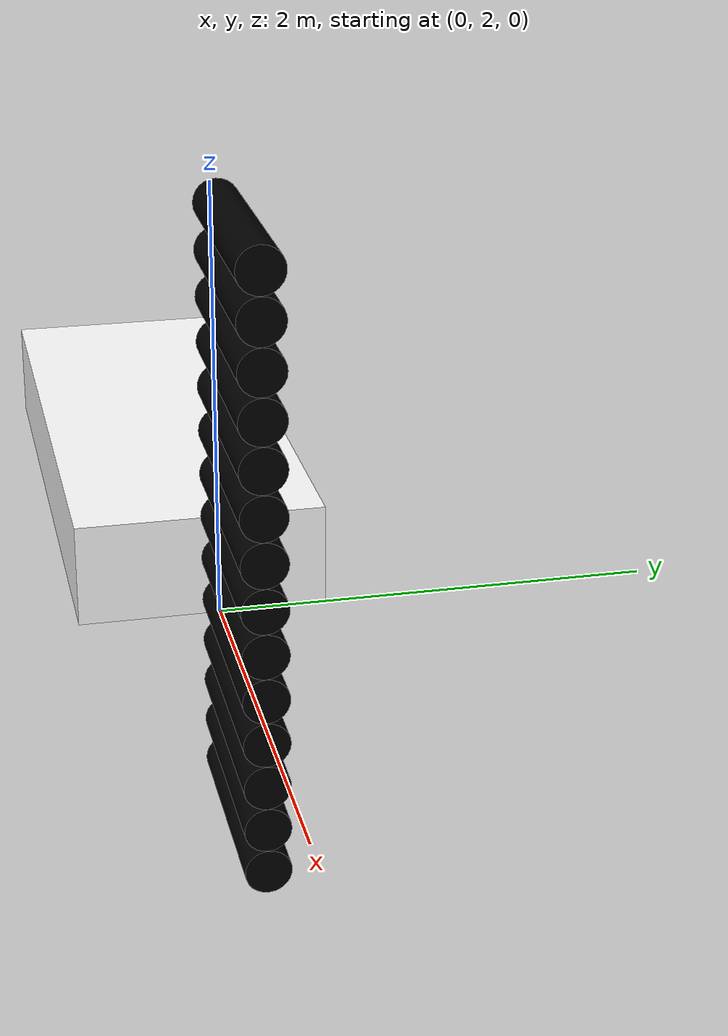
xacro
<?xml version="1.0"?>
<robot name="fliessband">
    <link name="base_link">
        <inertial>
            <origin xyz="-2 2 0" rpy="0.0 0.0 0.0"/>
            <mass value="1000"/>
            <inertia ixx="166.667" ixy="0.0" ixz="0.0" iyy="166.667" iyz="0.0" izz="166.667"/>
        </inertial>
        <visual name="">
            <origin xyz="-2 2 0" rpy="0.0 0.0 0.0"/>
            <geometry>
                <box size="3 1.2 0.5"/>
            </geometry>
            <material name="">
                <color rgba="1.0 1.0 1.0 1.0"/>
                <texture filename=""/>
            </material>
        </visual>
        <collision>
            <origin xyz="-2 2 0" rpy="0.0 0.0 0.0"/>
            <geometry>
                <box size="3 1.2 0.5"/>
            </geometry>
        </collision>

    </link>
      <gazebo reference="base_link">
       <material>Gazebo/White</material>
      </gazebo>
<link name="Cylinder_1">
        <inertial>
          <origin xyz="-1.95 2 0.65" />
          <mass value="0.1" />
          <inertia  ixx="0.01667" ixy="0.0"  ixz="0.0"  iyy="0.01667"  iyz="0.0"  izz="0.01667" />
        </inertial>
        <visual>
          <origin xyz="-1.95 2 0.65" />
         <geometry>
           <cylinder length="1" radius="0.1"/>
         </geometry>
         <material name="">
                <color rgba="0.0 0.0 0.0 1.0"/>
                <texture filename=""/>
            </material>
       </visual>
       <collision>
         <origin xyz="-1.95 2 0.65" />
         <geometry>
           <cylinder length="1" radius="0.1"/>
         </geometry>
       </collision>
     </link>
     <gazebo reference="Cylinder_1">
       <material>Gazebo/Black</material>
      </gazebo>
<link name="Cylinder_2">
        <inertial>
          <origin xyz="-1.7489999999999999 2 0.65" />
          <mass value="0.1" />
          <inertia  ixx="0.01667" ixy="0.0"  ixz="0.0"  iyy="0.01667"  iyz="0.0"  izz="0.01667" />
        </inertial>
        <visual>
          <origin xyz="-1.7489999999999999 2 0.65" />
         <geometry>
           <cylinder length="1" radius="0.1"/>
         </geometry>
         <material name="">
                <color rgba="0.0 0.0 0.0 1.0"/>
                <texture filename=""/>
            </material>
       </visual>
       <collision>
         <origin xyz="-1.7489999999999999 2 0.65" />
         <geometry>
           <cylinder length="1" radius="0.1"/>
         </geometry>
       </collision>
     </link>
     <gazebo reference="Cylinder_2">
       <material>Gazebo/Black</material>
      </gazebo>
<link name="Cylinder_3">
        <inertial>
          <origin xyz="-1.548 2 0.65" />
          <mass value="0.1" />
          <inertia  ixx="0.01667" ixy="0.0"  ixz="0.0"  iyy="0.01667"  iyz="0.0"  izz="0.01667" />
        </inertial>
        <visual>
          <origin xyz="-1.548 2 0.65" />
         <geometry>
           <cylinder length="1" radius="0.1"/>
         </geometry>
         <material name="">
                <color rgba="0.0 0.0 0.0 1.0"/>
                <texture filename=""/>
            </material>
       </visual>
       <collision>
         <origin xyz="-1.548 2 0.65" />
         <geometry>
           <cylinder length="1" radius="0.1"/>
         </geometry>
       </collision>
     </link>
     <gazebo reference="Cylinder_3">
       <material>Gazebo/Black</material>
      </gazebo>
<link name="Cylinder_4">
        <inertial>
          <origin xyz="-1.347 2 0.65" />
          <mass value="0.1" />
          <inertia  ixx="0.01667" ixy="0.0"  ixz="0.0"  iyy="0.01667"  iyz="0.0"  izz="0.01667" />
        </inertial>
        <visual>
          <origin xyz="-1.347 2 0.65" />
         <geometry>
           <cylinder length="1" radius="0.1"/>
         </geometry>
         <material name="">
                <color rgba="0.0 0.0 0.0 1.0"/>
                <texture filename=""/>
            </material>
       </visual>
       <collision>
         <origin xyz="-1.347 2 0.65" />
         <geometry>
           <cylinder length="1" radius="0.1"/>
         </geometry>
       </collision>
     </link>
     <gazebo reference="Cylinder_4">
       <material>Gazebo/Black</material>
      </gazebo>
<link name="Cylinder_5">
        <inertial>
          <origin xyz="-1.146 2 0.65" />
          <mass value="0.1" />
          <inertia  ixx="0.01667" ixy="0.0"  ixz="0.0"  iyy="0.01667"  iyz="0.0"  izz="0.01667" />
        </inertial>
        <visual>
          <origin xyz="-1.146 2 0.65" />
         <geometry>
           <cylinder length="1" radius="0.1"/>
         </geometry>
         <material name="">
                <color rgba="0.0 0.0 0.0 1.0"/>
                <texture filename=""/>
            </material>
       </visual>
       <collision>
         <origin xyz="-1.146 2 0.65" />
         <geometry>
           <cylinder length="1" radius="0.1"/>
         </geometry>
       </collision>
     </link>
     <gazebo reference="Cylinder_5">
       <material>Gazebo/Black</material>
      </gazebo>
<link name="Cylinder_6">
        <inertial>
          <origin xyz="-0.9449999999999998 2 0.65" />
          <mass value="0.1" />
          <inertia  ixx="0.01667" ixy="0.0"  ixz="0.0"  iyy="0.01667"  iyz="0.0"  izz="0.01667" />
        </inertial>
        <visual>
          <origin xyz="-0.9449999999999998 2 0.65" />
         <geometry>
           <cylinder length="1" radius="0.1"/>
         </geometry>
         <material name="">
                <color rgba="0.0 0.0 0.0 1.0"/>
                <texture filename=""/>
            </material>
       </visual>
       <collision>
         <origin xyz="-0.9449999999999998 2 0.65" />
         <geometry>
           <cylinder length="1" radius="0.1"/>
         </geometry>
       </collision>
     </link>
     <gazebo reference="Cylinder_6">
       <material>Gazebo/Black</material>
      </gazebo>
<link name="Cylinder_7">
        <inertial>
          <origin xyz="-0.744 2 0.65" />
          <mass value="0.1" />
          <inertia  ixx="0.01667" ixy="0.0"  ixz="0.0"  iyy="0.01667"  iyz="0.0"  izz="0.01667" />
        </inertial>
        <visual>
          <origin xyz="-0.744 2 0.65" />
         <geometry>
           <cylinder length="1" radius="0.1"/>
         </geometry>
         <material name="">
                <color rgba="0.0 0.0 0.0 1.0"/>
                <texture filename=""/>
            </material>
       </visual>
       <collision>
         <origin xyz="-0.744 2 0.65" />
         <geometry>
           <cylinder length="1" radius="0.1"/>
         </geometry>
       </collision>
     </link>
     <gazebo reference="Cylinder_7">
       <material>Gazebo/Black</material>
      </gazebo>
<link name="Cylinder_8">
        <inertial>
          <origin xyz="-0.5429999999999999 2 0.65" />
          <mass value="0.1" />
          <inertia  ixx="0.01667" ixy="0.0"  ixz="0.0"  iyy="0.01667"  iyz="0.0"  izz="0.01667" />
        </inertial>
        <visual>
          <origin xyz="-0.5429999999999999 2 0.65" />
         <geometry>
           <cylinder length="1" radius="0.1"/>
         </geometry>
         <material name="">
                <color rgba="0.0 0.0 0.0 1.0"/>
                <texture filename=""/>
            </material>
       </visual>
       <collision>
         <origin xyz="-0.5429999999999999 2 0.65" />
         <geometry>
           <cylinder length="1" radius="0.1"/>
         </geometry>
       </collision>
     </link>
     <gazebo reference="Cylinder_8">
       <material>Gazebo/Black</material>
      </gazebo>
<link name="Cylinder_9">
        <inertial>
          <origin xyz="-0.34199999999999986 2 0.65" />
          <mass value="0.1" />
          <inertia  ixx="0.01667" ixy="0.0"  ixz="0.0"  iyy="0.01667"  iyz="0.0"  izz="0.01667" />
        </inertial>
        <visual>
          <origin xyz="-0.34199999999999986 2 0.65" />
         <geometry>
           <cylinder length="1" radius="0.1"/>
         </geometry>
         <material name="">
                <color rgba="0.0 0.0 0.0 1.0"/>
                <texture filename=""/>
            </material>
       </visual>
       <collision>
         <origin xyz="-0.34199999999999986 2 0.65" />
         <geometry>
           <cylinder length="1" radius="0.1"/>
         </geometry>
       </collision>
     </link>
     <gazebo reference="Cylinder_9">
       <material>Gazebo/Black</material>
      </gazebo>
<link name="Cylinder_10">
        <inertial>
          <origin xyz="-0.1409999999999998 2 0.65" />
          <mass value="0.1" />
          <inertia  ixx="0.01667" ixy="0.0"  ixz="0.0"  iyy="0.01667"  iyz="0.0"  izz="0.01667" />
        </inertial>
        <visual>
          <origin xyz="-0.1409999999999998 2 0.65" />
         <geometry>
           <cylinder length="1" radius="0.1"/>
         </geometry>
         <material name="">
                <color rgba="0.0 0.0 0.0 1.0"/>
                <texture filename=""/>
            </material>
       </visual>
       <collision>
         <origin xyz="-0.1409999999999998 2 0.65" />
         <geometry>
           <cylinder length="1" radius="0.1"/>
         </geometry>
       </collision>
     </link>
     <gazebo reference="Cylinder_10">
       <material>Gazebo/Black</material>
      </gazebo>
<link name="Cylinder_11">
        <inertial>
          <origin xyz="0.060000000000000275 2 0.65" />
          <mass value="0.1" />
          <inertia  ixx="0.01667" ixy="0.0"  ixz="0.0"  iyy="0.01667"  iyz="0.0"  izz="0.01667" />
        </inertial>
        <visual>
          <origin xyz="0.060000000000000275 2 0.65" />
         <geometry>
           <cylinder length="1" radius="0.1"/>
         </geometry>
         <material name="">
                <color rgba="0.0 0.0 0.0 1.0"/>
                <texture filename=""/>
            </material>
       </visual>
       <collision>
         <origin xyz="0.060000000000000275 2 0.65" />
         <geometry>
           <cylinder length="1" radius="0.1"/>
         </geometry>
       </collision>
     </link>
     <gazebo reference="Cylinder_11">
       <material>Gazebo/Black</material>
      </gazebo>
<link name="Cylinder_12">
        <inertial>
          <origin xyz="0.26100000000000034 2 0.65" />
          <mass value="0.1" />
          <inertia  ixx="0.01667" ixy="0.0"  ixz="0.0"  iyy="0.01667"  iyz="0.0"  izz="0.01667" />
        </inertial>
        <visual>
          <origin xyz="0.26100000000000034 2 0.65" />
         <geometry>
           <cylinder length="1" radius="0.1"/>
         </geometry>
         <material name="">
                <color rgba="0.0 0.0 0.0 1.0"/>
                <texture filename=""/>
            </material>
       </visual>
       <collision>
         <origin xyz="0.26100000000000034 2 0.65" />
         <geometry>
           <cylinder length="1" radius="0.1"/>
         </geometry>
       </collision>
     </link>
     <gazebo reference="Cylinder_12">
       <material>Gazebo/Black</material>
      </gazebo>
<link name="Cylinder_13">
        <inertial>
          <origin xyz="0.46199999999999997 2 0.65" />
          <mass value="0.1" />
          <inertia  ixx="0.01667" ixy="0.0"  ixz="0.0"  iyy="0.01667"  iyz="0.0"  izz="0.01667" />
        </inertial>
        <visual>
          <origin xyz="0.46199999999999997 2 0.65" />
         <geometry>
           <cylinder length="1" radius="0.1"/>
         </geometry>
         <material name="">
                <color rgba="0.0 0.0 0.0 1.0"/>
                <texture filename=""/>
            </material>
       </visual>
       <collision>
         <origin xyz="0.46199999999999997 2 0.65" />
         <geometry>
           <cylinder length="1" radius="0.1"/>
         </geometry>
       </collision>
     </link>
     <gazebo reference="Cylinder_13">
       <material>Gazebo/Black</material>
      </gazebo>
<link name="Cylinder_14">
        <inertial>
          <origin xyz="0.663 2 0.65" />
          <mass value="0.1" />
          <inertia  ixx="0.01667" ixy="0.0"  ixz="0.0"  iyy="0.01667"  iyz="0.0"  izz="0.01667" />
        </inertial>
        <visual>
          <origin xyz="0.663 2 0.65" />
         <geometry>
           <cylinder length="1" radius="0.1"/>
         </geometry>
         <material name="">
                <color rgba="0.0 0.0 0.0 1.0"/>
                <texture filename=""/>
            </material>
       </visual>
       <collision>
         <origin xyz="0.663 2 0.65" />
         <geometry>
           <cylinder length="1" radius="0.1"/>
         </geometry>
       </collision>
     </link>
     <gazebo reference="Cylinder_14">
       <material>Gazebo/Black</material>
      </gazebo>
 <joint name="1_First_Joint" type="revolute">
        <axis xyz="0 0 1"/>
        <limit effort="-1" lower="-10000000000" upper="10000000000" velocity="-1.0"/>
        <origin rpy="0 1.570796 0" xyz="0.0 0.0 0"/>
        <parent link="base_link"/>
        <child link="Cylinder_1"/>
     </joint>
 <joint name="Revulate_2" type="revolute">
        <axis xyz="0 0 1"/>
        <limit effort="-1" lower="-10000000000" upper="10000000000" velocity="-1.0"/>
        <origin rpy="0 1.570796 0" xyz="0.0 0.0 0"/>
        <parent link="base_link"/>
        <child link="Cylinder_2"/>
     </joint>
<transmission type="SimpleTransmission" name="Main_Transmission">
      <actuator name="Cylinder_1" />
      <joint name="Revulate_2" />
      <mechanicalReduction>1</mechanicalReduction>
    </transmission>
 <joint name="Revulate_3" type="revolute">
        <axis xyz="0 0 1"/>
        <limit effort="-1" lower="-10000000000" upper="10000000000" velocity="-1.0"/>
        <origin rpy="0 1.570796 0" xyz="0.0 0.0 0"/>
        <parent link="base_link"/>
        <child link="Cylinder_3"/>
     </joint>
<transmission type="SimpleTransmission" name="Transmission_31">
      <actuator name="Cylinder_1" />
      <joint name="Revulate_3" />
      <mechanicalReduction>1</mechanicalReduction>
    </transmission>
 <joint name="Revulate_4" type="revolute">
        <axis xyz="0 0 1"/>
        <limit effort="-1" lower="-10000000000" upper="10000000000" velocity="-1.0"/>
        <origin rpy="0 1.570796 0" xyz="0.0 0.0 0"/>
        <parent link="base_link"/>
        <child link="Cylinder_4"/>
     </joint>
<transmission type="SimpleTransmission" name="Transmission_32">
      <actuator name="Cylinder_1" />
      <joint name="Revulate_4" />
      <mechanicalReduction>1</mechanicalReduction>
    </transmission>
 <joint name="Revulate_5" type="revolute">
        <axis xyz="0 0 1"/>
        <limit effort="-1" lower="-10000000000" upper="10000000000" velocity="-1.0"/>
        <origin rpy="0 1.570796 0" xyz="0.0 0.0 0"/>
        <parent link="base_link"/>
        <child link="Cylinder_5"/>
     </joint>
<transmission type="SimpleTransmission" name="Transmission_33">
      <actuator name="Cylinder_1" />
      <joint name="Revulate_5" />
      <mechanicalReduction>1</mechanicalReduction>
    </transmission>
 <joint name="Revulate_6" type="revolute">
        <axis xyz="0 0 1"/>
        <limit effort="-1" lower="-10000000000" upper="10000000000" velocity="-1.0"/>
        <origin rpy="0 1.570796 0" xyz="0.0 0.0 0"/>
        <parent link="base_link"/>
        <child link="Cylinder_6"/>
     </joint>
<transmission type="SimpleTransmission" name="Transmission_34">
      <actuator name="Cylinder_1" />
      <joint name="Revulate_6" />
      <mechanicalReduction>1</mechanicalReduction>
    </transmission>
 <joint name="Revulate_7" type="revolute">
        <axis xyz="0 0 1"/>
        <limit effort="-1" lower="-10000000000" upper="10000000000" velocity="-1.0"/>
        <origin rpy="0 1.570796 0" xyz="0.0 0.0 0"/>
        <parent link="base_link"/>
        <child link="Cylinder_7"/>
     </joint>
<transmission type="SimpleTransmission" name="Transmission_35">
      <actuator name="Cylinder_1" />
      <joint name="Revulate_7" />
      <mechanicalReduction>1</mechanicalReduction>
    </transmission>
 <joint name="Revulate_8" type="revolute">
        <axis xyz="0 0 1"/>
        <limit effort="-1" lower="-10000000000" upper="10000000000" velocity="-1.0"/>
        <origin rpy="0 1.570796 0" xyz="0.0 0.0 0"/>
        <parent link="base_link"/>
        <child link="Cylinder_8"/>
     </joint>
<transmission type="SimpleTransmission" name="Transmission_36">
      <actuator name="Cylinder_1" />
      <joint name="Revulate_8" />
      <mechanicalReduction>1</mechanicalReduction>
    </transmission>
 <joint name="Revulate_9" type="revolute">
        <axis xyz="0 0 1"/>
        <limit effort="-1" lower="-10000000000" upper="10000000000" velocity="-1.0"/>
        <origin rpy="0 1.570796 0" xyz="0.0 0.0 0"/>
        <parent link="base_link"/>
        <child link="Cylinder_9"/>
     </joint>
<transmission type="SimpleTransmission" name="Transmission_37">
      <actuator name="Cylinder_1" />
      <joint name="Revulate_9" />
      <mechanicalReduction>1</mechanicalReduction>
    </transmission>
 <joint name="Revulate_10" type="revolute">
        <axis xyz="0 0 1"/>
        <limit effort="-1" lower="-10000000000" upper="10000000000" velocity="-1.0"/>
        <origin rpy="0 1.570796 0" xyz="0.0 0.0 0"/>
        <parent link="base_link"/>
        <child link="Cylinder_10"/>
     </joint>
<transmission type="SimpleTransmission" name="Transmission_38">
      <actuator name="Cylinder_1" />
      <joint name="Revulate_10" />
      <mechanicalReduction>1</mechanicalReduction>
    </transmission>
 <joint name="Revulate_11" type="revolute">
        <axis xyz="0 0 1"/>
        <limit effort="-1" lower="-10000000000" upper="10000000000" velocity="-1.0"/>
        <origin rpy="0 1.570796 0" xyz="0.0 0.0 0"/>
        <parent link="base_link"/>
        <child link="Cylinder_11"/>
     </joint>
<transmission type="SimpleTransmission" name="Transmission_39">
      <actuator name="Cylinder_1" />
      <joint name="Revulate_11" />
      <mechanicalReduction>1</mechanicalReduction>
    </transmission>
 <joint name="Revulate_12" type="revolute">
        <axis xyz="0 0 1"/>
        <limit effort="-1" lower="-10000000000" upper="10000000000" velocity="-1.0"/>
        <origin rpy="0 1.570796 0" xyz="0.0 0.0 0"/>
        <parent link="base_link"/>
        <child link="Cylinder_12"/>
     </joint>
<transmission type="SimpleTransmission" name="Transmission_40">
      <actuator name="Cylinder_1" />
      <joint name="Revulate_12" />
      <mechanicalReduction>1</mechanicalReduction>
    </transmission>
 <joint name="Revulate_13" type="revolute">
        <axis xyz="0 0 1"/>
        <limit effort="-1" lower="-10000000000" upper="10000000000" velocity="-1.0"/>
        <origin rpy="0 1.570796 0" xyz="0.0 0.0 0"/>
        <parent link="base_link"/>
        <child link="Cylinder_13"/>
     </joint>
<transmission type="SimpleTransmission" name="Transmission_41">
      <actuator name="Cylinder_1" />
      <joint name="Revulate_13" />
      <mechanicalReduction>1</mechanicalReduction>
    </transmission>
 <joint name="Revulate_14" type="revolute">
        <axis xyz="0 0 1"/>
        <limit effort="-1" lower="-10000000000" upper="10000000000" velocity="-1.0"/>
        <origin rpy="0 1.570796 0" xyz="0.0 0.0 0"/>
        <parent link="base_link"/>
        <child link="Cylinder_14"/>
     </joint>
<transmission type="SimpleTransmission" name="Transmission_42">
      <actuator name="Cylinder_1" />
      <joint name="Revulate_14" />
      <mechanicalReduction>1</mechanicalReduction>
    </transmission>
  </robot>
